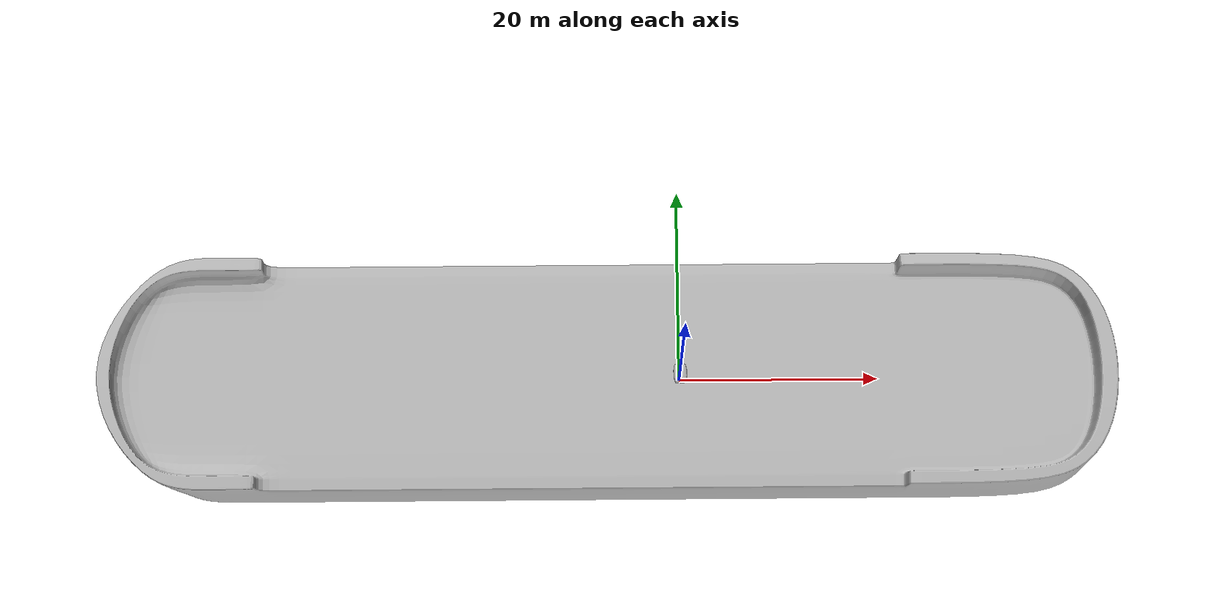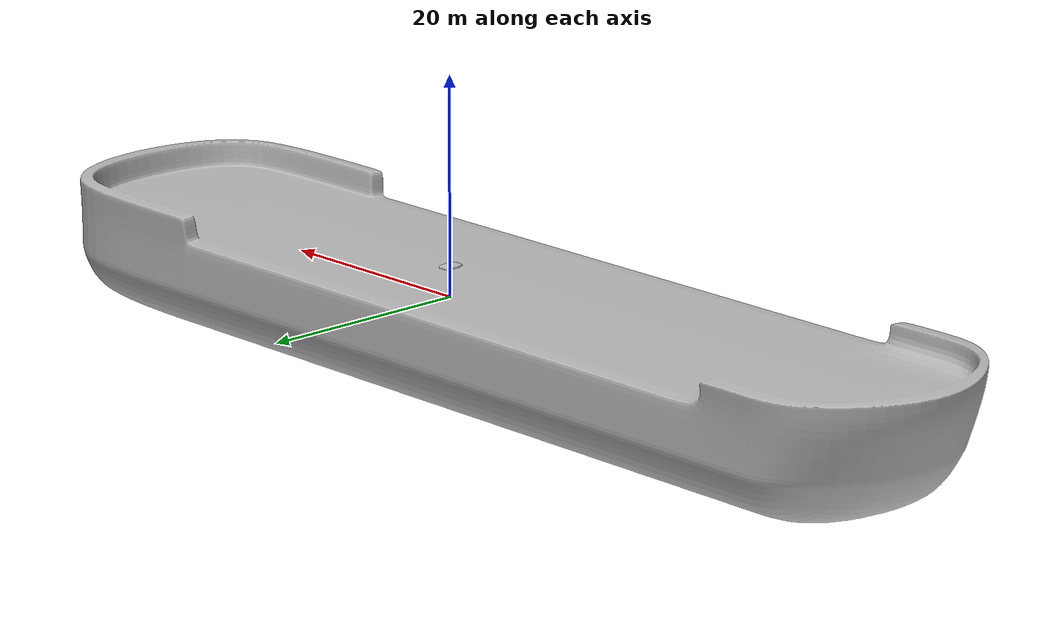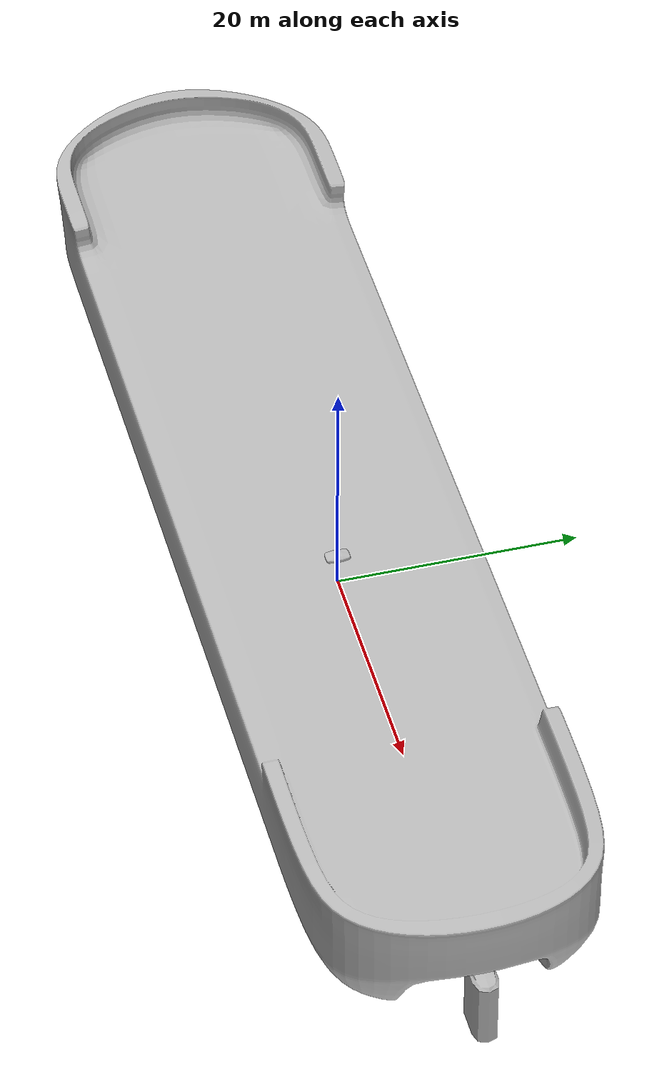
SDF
<sdf version='1.10'>
  <world name='world_test'>
    <physics name='default_physics' type='ode'>
      <max_step_size>0.001</max_step_size>
      <real_time_factor>1</real_time_factor>
      <real_time_update_rate>1000</real_time_update_rate>
    </physics>
    <plugin name='gz::sim::systems::Physics' filename='gz-sim-physics-system'/>
    <plugin name='gz::sim::systems::UserCommands' filename='gz-sim-user-commands-system'/>
    <plugin name='gz::sim::systems::SceneBroadcaster' filename='gz-sim-scene-broadcaster-system'/>
    <plugin name='gz::sim::systems::Imu' filename='gz-sim-imu-system'/>
    <gravity>0 0 -9.8000000000000007</gravity>
    <magnetic_field>5.5644999999999998e-06 2.2875799999999999e-05 -4.2388400000000002e-05</magnetic_field>
    <atmosphere type='adiabatic'/>
    <scene>
      <ambient>0.400000006 0.400000006 0.400000006 1</ambient>
      <background>0.699999988 0.699999988 0.699999988 1</background>
      <shadows>true</shadows>
    </scene>
    <model name='ship'>
      <static>true</static>
      <link name='body'>
        <pose>0 0 0 0 0 0</pose>
        <visual name='visual'>
          <geometry>
            <mesh>
              <uri>file:///home/rutz/projects/Robots-everywhere/model://ship/boat.obj</uri>
            </mesh>
          </geometry>
        </visual>
        <collision name='collision'>
          <geometry>
            <mesh>
              <uri>file:///home/rutz/projects/Robots-everywhere/model://ship/boat.obj</uri>
            </mesh>
          </geometry>
        </collision>
        <inertial>
          <pose>0 0 0 0 0 0</pose>
          <mass>1</mass>
          <inertia>
            <ixx>1</ixx>
            <ixy>0</ixy>
            <ixz>0</ixz>
            <iyy>1</iyy>
            <iyz>0</iyz>
            <izz>1</izz>
          </inertia>
        </inertial>
        <enable_wind>false</enable_wind>
      </link>
      <pose>0 0 0 0 0 0</pose>
      <self_collide>false</self_collide>
    </model>
    <model name='robot'>
      <static>false</static>
      <link name='body'>
        <pose>0 0 20 0 0 0</pose>
        <inertial>
          <mass>1.14395</mass>
          <inertia>
            <ixx>0.095328999999999997</ixx>
            <ixy>0</ixy>
            <ixz>0</ixz>
            <iyy>0.38131700000000002</iyy>
            <iyz>0</iyz>
            <izz>0.47664600000000001</izz>
          </inertia>
          <pose>0 0 0 0 0 0</pose>
        </inertial>
        <visual name='visual'>
          <geometry>
            <mesh>
              <uri>file:///home/rutz/projects/Robots-everywhere/model://RobotModel/RobotEverywhere.obj</uri>
            </mesh>
          </geometry>
        </visual>
        <collision name='collision'>
          <geometry>
            <mesh>
              <uri>file:///home/rutz/projects/Robots-everywhere/model://RobotModel/RobotEverywhere.obj</uri>
            </mesh>
          </geometry>
        </collision>
        <enable_wind>false</enable_wind>
      </link>
      <pose>-0.010037885281390158 -0.015304747117954064 -17.360221996885528 -1.7320956932141268e-06 1.254724794018821e-17 0.013970955932738147</pose>
      <self_collide>false</self_collide>
    </model>
    <light name='sun' type='directional'>
      <pose>0 0 10 0 0 0</pose>
      <cast_shadows>true</cast_shadows>
      <intensity>1</intensity>
      <direction>-0.5 0.10000000000000001 -0.90000000000000002</direction>
      <diffuse>0.800000012 0.800000012 0.800000012 1</diffuse>
      <specular>0.200000003 0.200000003 0.200000003 1</specular>
      <attenuation>
        <range>1000</range>
        <linear>0.0099999997764825821</linear>
        <constant>0.89999997615814209</constant>
        <quadratic>0.0010000000474974513</quadratic>
      </attenuation>
      <spot>
        <inner_angle>0</inner_angle>
        <outer_angle>0</outer_angle>
        <falloff>0</falloff>
      </spot>
    </light>
  </world>
</sdf>
